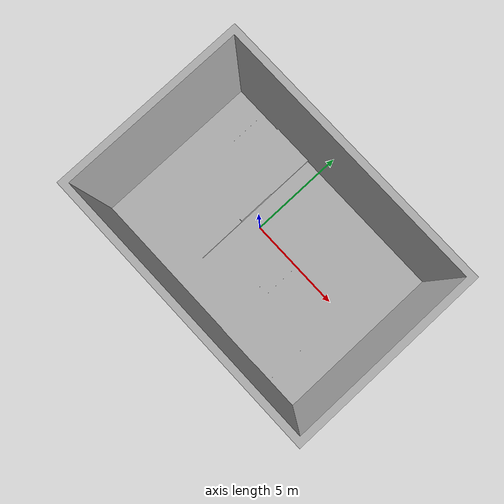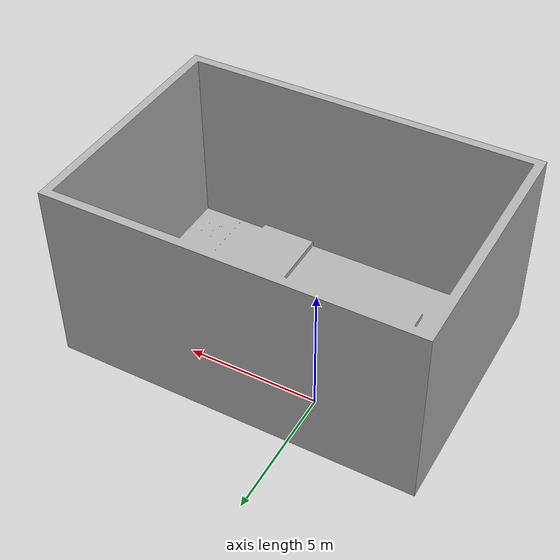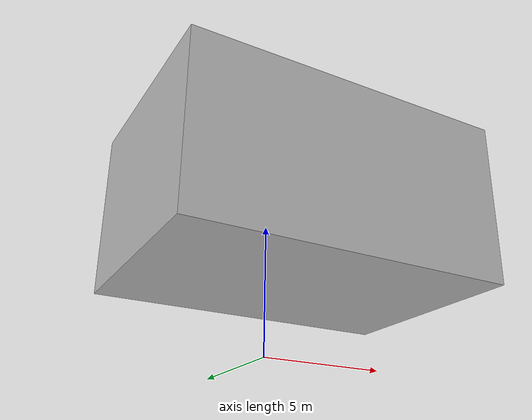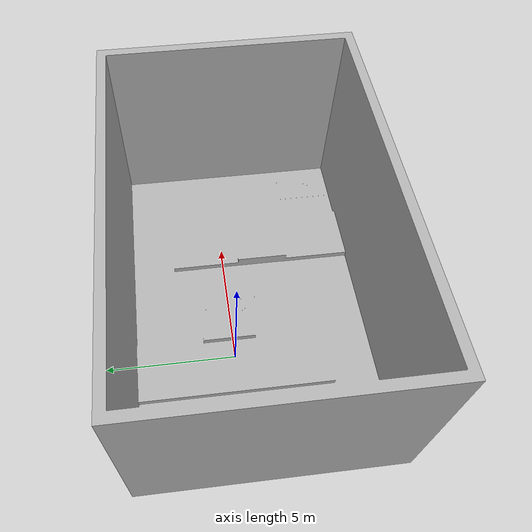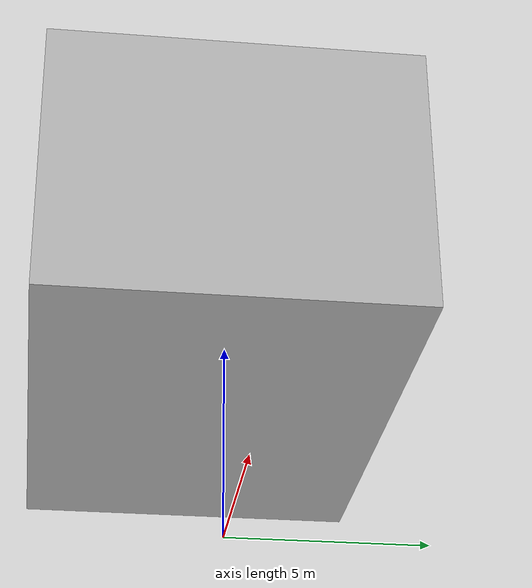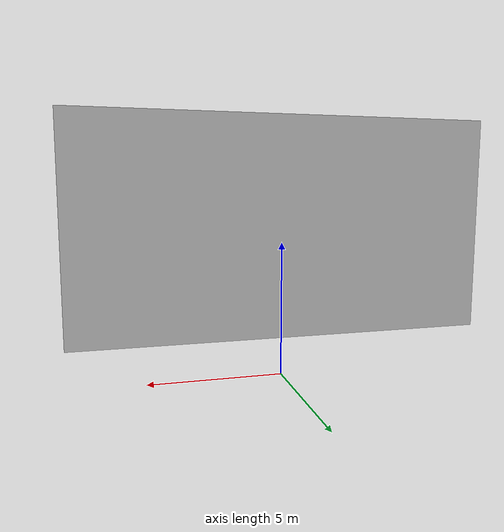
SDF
<?xml version='1.0'?>
<sdf version='1.6'>
  <model name='rmul_2026'>
    <link name='body'>
      <pose frame=''>1.0 -0.5 2.65 -1.5705 -0 0</pose>
      <self_collide>0</self_collide>
      <kinematic>0</kinematic>
      <gravity>1</gravity>
      <visual name='visual'>
        <geometry>
          <mesh>
            <uri>model://rmul_2026/meshes/rmul_2026.stl</uri>
            <scale>0.001 0.001 0.001</scale>
          </mesh>
        </geometry>
        <material>
          <ambient>0.3 0.3 0.3 1</ambient>
          <diffuse>0.7 0.7 0.7 1</diffuse>
          <specular>0.01 0.01 0.01 1</specular>
          <emissive>0 0 0 1</emissive>
        </material>
      </visual>
      <collision name='collision'>
        <laser_retro>0</laser_retro>
        <max_contacts>10</max_contacts>
        <geometry>
          <mesh>
            <uri>model://rmul_2026/meshes/rmul_2026.stl</uri>
            <scale>0.001 0.001 0.001</scale>
          </mesh>
        </geometry>
      </collision>
    </link>
    <static>true</static>
  </model>
</sdf>
